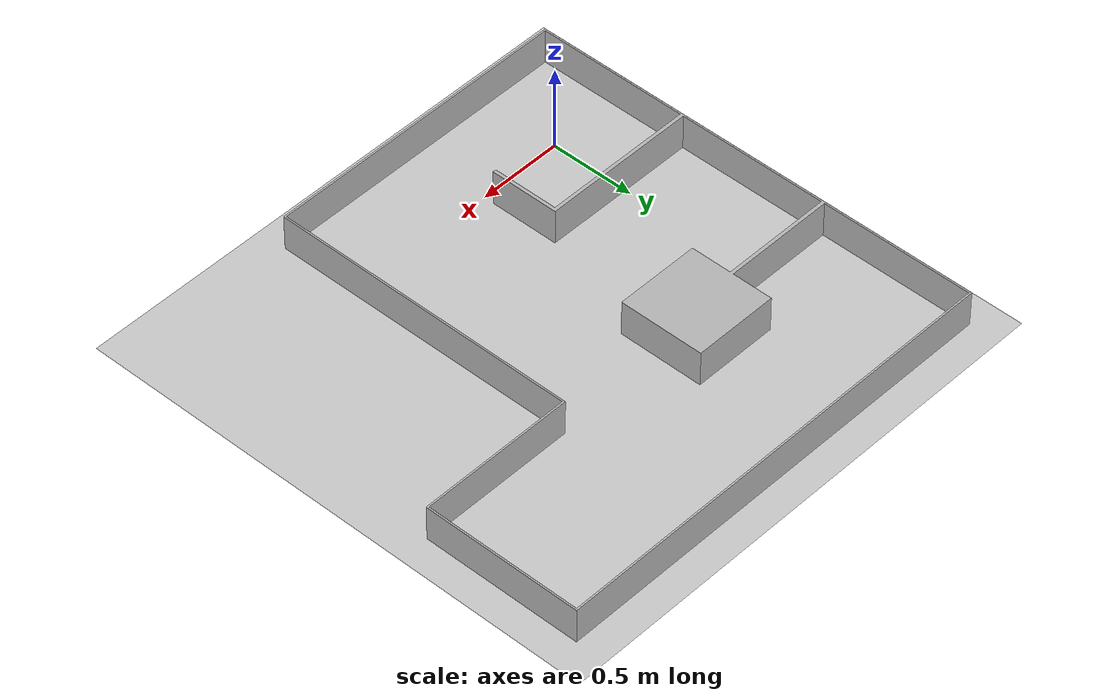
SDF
<sdf version="1.7">
 <world name="default">
  <model name="ground_plane">
   <static>1</static>
   <link name="link">
    <collision name="collision">
     <geometry><plane><normal>0 0 1</normal><size>100 100</size></plane></geometry>
     <surface>
      <contact><collide_bitmask>65535</collide_bitmask></contact>
      <friction><ode><mu>100</mu><mu2>50</mu2></ode></friction>
     </surface>
    </collision>
    <visual name="visual">
     <cast_shadows>0</cast_shadows>
     <geometry><plane><normal>0 0 1</normal><size>100 100</size></plane></geometry>
     <material>
      <script><uri>file://media/materials/scripts/gazebo.material</uri><name>Gazebo/Grey</name></script>
     </material>
    </visual>
   </link>
  </model>
  <light name="sun" type="directional">
   <pose>0 0 10 0 -0 0</pose>
   <diffuse>0.8 0.8 0.8 1</diffuse>
   <specular>0.2 0.2 0.2 1</specular>
   <attenuation>
    <range>1000</range>
    <constant>0.9</constant>
    <linear>0.01</linear>
    <quadratic>0.001</quadratic>
   </attenuation>
   <direction>-0.5 0.1 -0.9</direction>
   <spot><inner_angle>0</inner_angle><outer_angle>0</outer_angle><falloff>0</falloff></spot>
  </light>
  <scene><shadows>0</shadows><ambient>0.4 0.4 0.4 1</ambient><background>0.7 0.7 0.7 1</background></scene>
  <physics type="ode">
   <real_time_update_rate>9000</real_time_update_rate>
   <max_step_size>0.001</max_step_size>
   <real_time_factor>1</real_time_factor>
   <ode>
    <solver>
     <type>quick</type>
     <iters>150</iters>
     <precon_iters>0</precon_iters>
     <sor>1.4</sor>
     <use_dynamic_moi_rescaling>1</use_dynamic_moi_rescaling>
    </solver>
    <constraints>
     <cfm>1e-05</cfm>
     <erp>0.2</erp>
     <contact_max_correcting_vel>2000</contact_max_correcting_vel>
     <contact_surface_layer>0.01</contact_surface_layer>
    </constraints>
   </ode>
  </physics>
  <gravity>0 0 -9.8</gravity>
  <magnetic_field>6e-06 2.3e-05 -4.2e-05</magnetic_field>
  <atmosphere type="adiabatic"/>
  <audio><device>default</device></audio>
  <spherical_coordinates>
   <surface_model>EARTH_WGS84</surface_model>
   <latitude_deg>0</latitude_deg>
   <longitude_deg>0</longitude_deg>
   <elevation>0</elevation>
   <heading_deg>0</heading_deg>
  </spherical_coordinates>
  <model name="my_map">
   <static>1</static>
   <link name="link">
    <visual name="visual">
     <geometry><mesh><uri>model://middle/meshes/middle.dae</uri><scale>1 1 1</scale></mesh></geometry>
    </visual>
    <collision name="collision">
     <geometry><mesh><uri>model://middle/meshes/middle.dae</uri><scale>1 1 1</scale></mesh></geometry>
     <surface><friction><ode><mu>1</mu><mu2>1</mu2></ode></friction></surface>
    </collision>
   </link>
   <pose>-0.418602 -0.454393 0 0 -0 0</pose>
  </model>
 </world>
</sdf>
